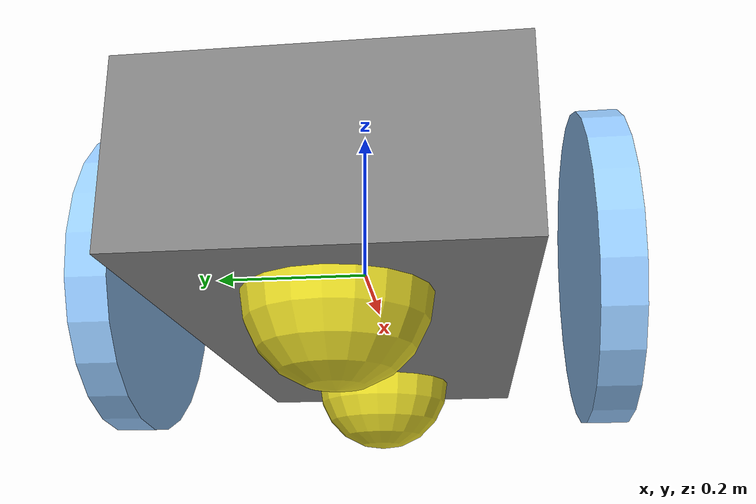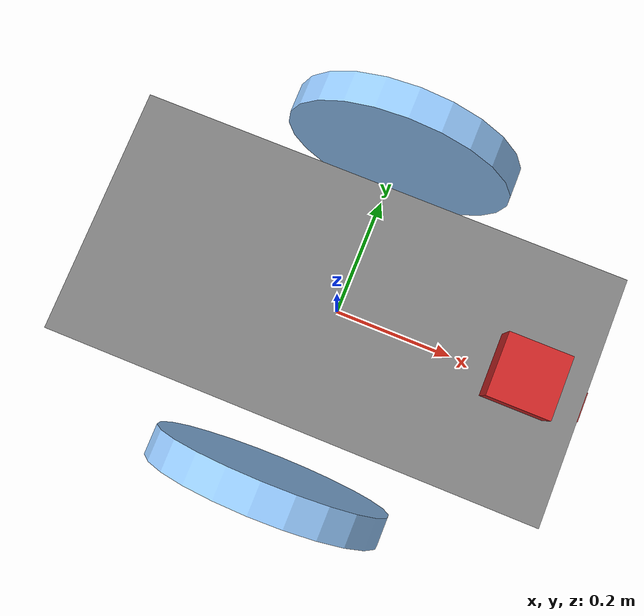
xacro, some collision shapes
<?xml version='1.0'?>

<robot name="my_robot" xmlns:xacro="http://www.ros.org/wiki/xacro">
<xacro:include filename="$(find my_robot)/urdf/my_robot.gazebo" />

  <link name="robot_footprint"></link>

  <joint name="robot_footprint_joint" type="fixed">
    <origin xyz="0 0 0" rpy="0 0 0" />
    <parent link="robot_footprint"/>
    <child link="chassis" />
  </joint>

  <link name='chassis'>
    <pose>0 0 0.1 0 0 0</pose>

    <inertial>
      <mass value="30.0"/>
      <origin xyz="0.0 0 0" rpy=" 0 0 0"/>
      <inertia
          ixx="0.1" ixy="0" ixz="0"
          iyy="0.1" iyz="0"
          izz="0.1"
      />
    </inertial>

    <collision name='collision'>
      <origin xyz="0 0 0" rpy=" 0 0 0"/>
      <geometry>
        <box size=".8 .4 .2"/>
      </geometry>
    </collision>

    <visual name='chassis_visual'>
      <origin xyz="0 0 0" rpy=" 0 0 0"/>
      <material name="Grey">
        <color rgba="0.5 0.5 0.5 1.0"/>
      </material>
      <geometry>
        <box size=".8 .4 .2"/>
      </geometry>
    </visual>

    <collision name='back_caster_collision'>
      <origin xyz="-0.25 0 -0.1" rpy=" 0 0 0"/>
      <geometry>
        <sphere radius="0.0998"/>
      </geometry>
    </collision>

    <visual name='back_caster_visual'>
      <origin xyz="-0.25 0 -0.1" rpy=" 0 0 0"/>
      <geometry>
        <sphere radius="0.1"/>
      </geometry>
    </visual>

    <collision name='front_caster_collision'>
      <origin xyz="0.25 0 -0.1" rpy=" 0 0 0"/>
      <geometry>
        <sphere radius="0.0998"/>
      </geometry>
    </collision>

    <visual name='front_caster_visual'>
      <origin xyz="0.25 0 -0.1" rpy=" 0 0 0"/>
      <geometry>
        <sphere radius="0.1"/>
      </geometry>
    </visual>

  </link>

  <link name='left_wheel'>
     <inertial>
      <origin xyz="0 0 0" rpy="0 1.5707 1.5707"/>
      <mass value="5.0"/>
      <inertia
          ixx="0.1" ixy="0" ixz="0"
          iyy="0.1" iyz="0"
          izz="0.1"
      />
    </inertial>

     <visual>
      <origin xyz="0 0 0" rpy="0 1.5707 1.5707"/>
      <material name="LightBlue">
        <color rgba="0.589 0.793 1.0 1.0"/>
      </material>
      <geometry>
       <cylinder length="0.05" radius="0.2"/>
      </geometry>
    </visual>

    <collision>
      <origin xyz="0 0 0" rpy="0 1.5707 1.5707"/>
      <geometry>
        <cylinder length="0.05" radius="0.2"/>
      </geometry>
    </collision>
  </link>

  <link name='right_wheel'>
     <inertial>
      <origin xyz="0 0 0" rpy="0 1.5707 1.5707"/>
      <mass value="5.0"/>
      <inertia
          ixx="0.1" ixy="0" ixz="0"
          iyy="0.1" iyz="0"
          izz="0.1"
      />
    </inertial>

     <visual>
      <origin xyz="0 0 0" rpy="0 1.5707 1.5707"/>
      <material name="LightBlue">
        <color rgba="0.589 0.793 1.0 1.0"/>
      </material>
      <geometry>
       <cylinder length="0.05" radius="0.2"/>
      </geometry>
    </visual>

    <collision>
      <origin xyz="0 0 0" rpy="0 1.5707 1.5707"/>
      <geometry>
        <cylinder length="0.05" radius="0.2"/>
      </geometry>
    </collision>
  </link>

 <link name='camera'>
     <inertial>
      <origin xyz="0 0 0" rpy="0 0 0"/>
      <mass value="0.1"/>
      <inertia
          ixx="1e-6" ixy="0" ixz="0"
          iyy="1e-6" iyz="0"
          izz="1e-6"
      />
    </inertial>

     <visual>
      <origin xyz="0 0 0" rpy="0 0 0"/>
      <geometry>
       <box size="0.05 0.05 0.05"/>
      </geometry>
    </visual>

    <collision>
      <origin xyz="0 0 0" rpy="0 0 0"/>
      <geometry>
        <box size="0.05 0.05 0.05" />
      </geometry>
    </collision>

  </link>

 <link name='hokuyo'>
     <inertial>
      <origin xyz="0 0 0" rpy="0 0 0"/>
      <mass value="1e-5"/>
      <inertia
          ixx="1e-6" ixy="0" ixz="0"
          iyy="1e-6" iyz="0"
          izz="1e-6"
      />
    </inertial>

     <visual>
      <origin xyz="0 0 0" rpy="0 0 0"/>
      <geometry>
       <mesh filename="package://my_robot/meshes/hokuyo.dae"/>
      </geometry>
    </visual>

    <collision>
      <origin xyz="0 0 0" rpy="0 0 0"/>
      <geometry>
        <box size="0.1 0.1 0.1" />
      </geometry>
    </collision>

  </link>

   <joint name="left_wheel_hinge" type="continuous">
     <origin xyz="0 0.30 0" rpy="0 0 0"/>
     <child link="left_wheel"/>
     <parent link="chassis"/>
     <axis xyz="0 1 0" rpy="0 0 0"/>
     <limit effort="10000" velocity="1000"/>
     <dynamics damping="1.0" friction="1.0"/>
  </joint>

    <joint name="right_wheel_hinge" type="continuous">
     <origin xyz="0 -0.30 0" rpy="0 0 0"/>
     <child link="right_wheel"/>
     <parent link="chassis"/>
     <axis xyz="0 1 0" rpy="0 0 0"/>
     <limit effort="10000" velocity="1000"/>
     <dynamics damping="1.0" friction="1.0"/>
  </joint>

    <joint name="camera_joint" type="fixed">
     <origin xyz="0.4 0 0" rpy="0 0 0"/>
     <child link="camera"/>
     <parent link="chassis"/>
     <axis xyz="0 1 0" rpy="0 0 0"/>
  </joint>

    <joint name="hokuyo_joint" type="fixed">
     <origin xyz="0.30 0 0.1" rpy="0 0 0"/>
     <child link="hokuyo"/>
     <parent link="chassis"/>
     <axis xyz="0 1 0" rpy="0 0 0"/>
  </joint>

  <gazebo reference="chassis">
    <material>Gazebo/Yellow</material>
  </gazebo>

  <gazebo reference="left_wheel">
    <material>Gazebo/Green</material>
  </gazebo>

  <gazebo reference="right_wheel">
    <material>Gazebo/Green</material>
  </gazebo>

  <gazebo reference="camera">
    <material>Gazebo/Red</material>
  </gazebo>

  <gazebo reference="hokuyo">
    <material>Gazebo/Red</material>
  </gazebo>
</robot>
